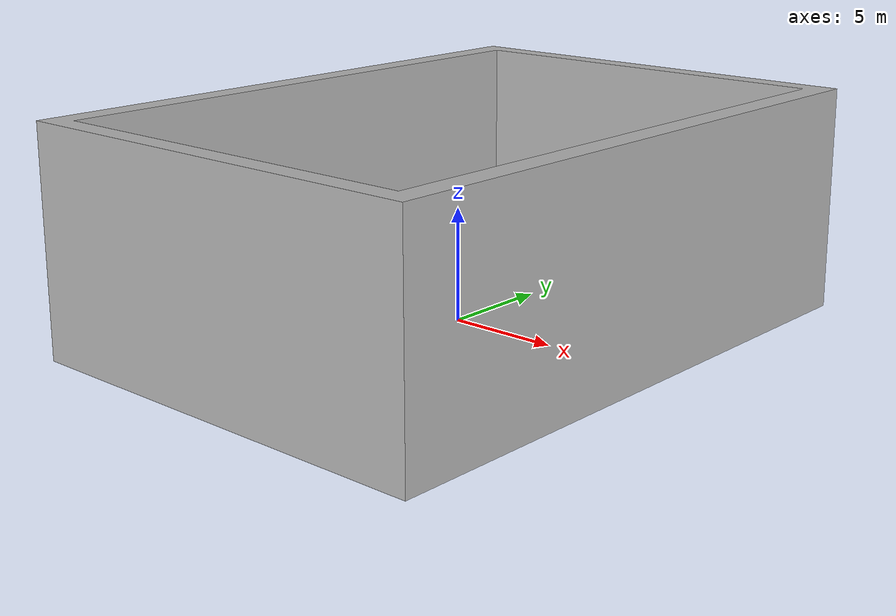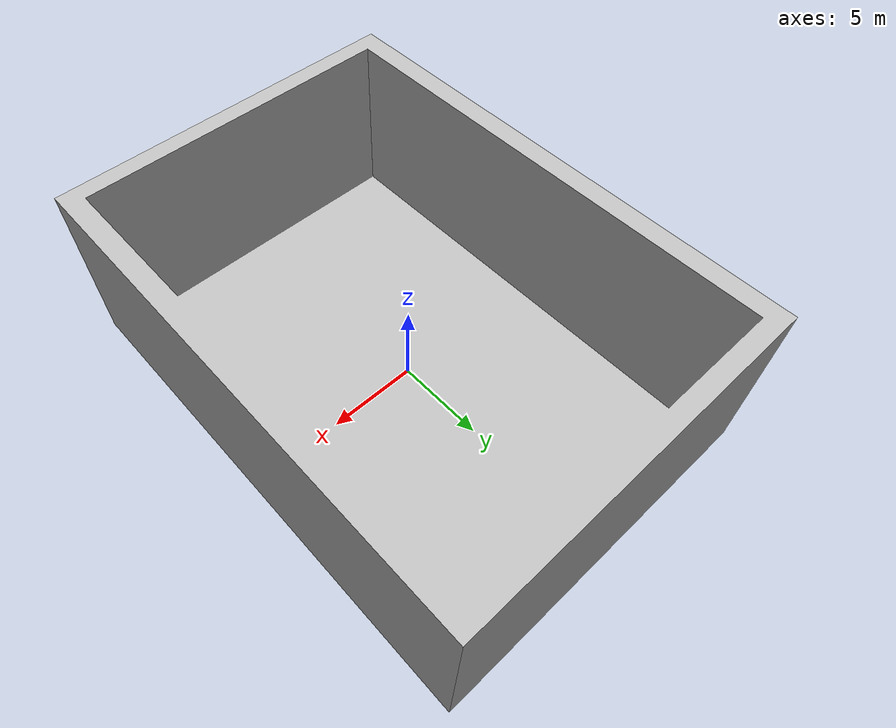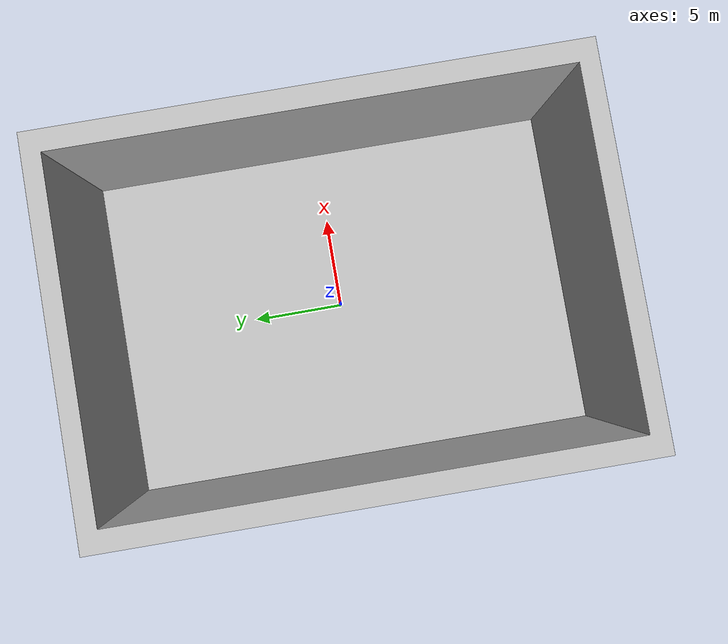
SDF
<sdf version="1.6">
 <world name="world">
  <model name="levine">
   <static>1</static>
   <link name="body">
    <visual name="visual">
     <pose>0 0 -.5 0 -0 0</pose>
     <geometry><mesh><uri>model://living_room/room.dae</uri></mesh></geometry>
    </visual>
    <collision name="collision">
     <pose>0 0 -0.5 0 -0 0</pose>
     <geometry><mesh><uri>model://living_room/room.stl</uri></mesh></geometry>
    </collision>
   </link>
  </model>
  <gravity>0 0 -9.8</gravity>
  <magnetic_field>6e-06 2.3e-05 -4.2e-05</magnetic_field>
  <atmosphere type="adiabatic"/>
  <physics name="default_physics" default="0" type="ode">
   <max_step_size>0.001</max_step_size>
   <real_time_factor>1</real_time_factor>
   <real_time_update_rate>1000</real_time_update_rate>
  </physics>
  <scene><ambient>0.4 0.4 0.4 1</ambient><background>0.7 0.7 0.7 1</background><shadows>1</shadows></scene>
  <spherical_coordinates>
   <surface_model>EARTH_WGS84</surface_model>
   <latitude_deg>0</latitude_deg>
   <longitude_deg>0</longitude_deg>
   <elevation>0</elevation>
   <heading_deg>0</heading_deg>
  </spherical_coordinates>
  <light name="user_point_light_0_clone_3" type="point">
   <pose>-5.87904 -7.04337 1 0 -0 0</pose>
   <diffuse>0.494118 0.494118 0.494118 1</diffuse>
   <specular>0.0941176 0.0941176 0.0941176 1</specular>
   <direction>0 0 -1</direction>
   <attenuation>
    <range>2000</range>
    <constant>0.1</constant>
    <linear>0</linear>
    <quadratic>0.001</quadratic>
   </attenuation>
   <cast_shadows>0</cast_shadows>
  </light>
  <light name="user_point_light_0_clone_3_clone_0_clone_2" type="point">
   <pose>-0.280562 0.409794 9 0 -0 0</pose>
   <diffuse>0.494118 0.494118 0.494118 1</diffuse>
   <specular>0.0901961 0.0901961 0.0901961 1</specular>
   <direction>0 0 -1</direction>
   <attenuation>
    <range>2000</range>
    <constant>0</constant>
    <linear>0</linear>
    <quadratic>0.01</quadratic>
   </attenuation>
   <cast_shadows>0</cast_shadows>
  </light>
  <light name="user_point_light_0_clone_3_clone_0_clone_2_clone" type="point">
   <pose>4.70046 -7.9771 9 0 -0 0</pose>
   <diffuse>0.494118 0.494118 0.494118 1</diffuse>
   <specular>0.0901961 0.0901961 0.0901961 1</specular>
   <direction>0 0 -1</direction>
   <attenuation>
    <range>2000</range>
    <constant>0</constant>
    <linear>0</linear>
    <quadratic>0.01</quadratic>
   </attenuation>
   <cast_shadows>0</cast_shadows>
  </light>
  <light name="user_point_light_0_clone_3_clone_0_clone_2_clone_0" type="point">
   <pose>4.97848 7.31625 9 0 -0 0</pose>
   <diffuse>0.494118 0.494118 0.494118 1</diffuse>
   <specular>0.0901961 0.0901961 0.0901961 1</specular>
   <direction>0 0 -1</direction>
   <attenuation>
    <range>2000</range>
    <constant>0</constant>
    <linear>0</linear>
    <quadratic>0.01</quadratic>
   </attenuation>
   <cast_shadows>0</cast_shadows>
  </light>
  <light name="user_point_light_0_clone_3_clone_0_clone_2_clone_1" type="point">
   <pose>-2.95045 7.64392 9 0 -0 0</pose>
   <diffuse>0.494118 0.494118 0.494118 1</diffuse>
   <specular>0.0901961 0.0901961 0.0901961 1</specular>
   <direction>0 0 -1</direction>
   <attenuation>
    <range>2000</range>
    <constant>0</constant>
    <linear>0</linear>
    <quadratic>0.01</quadratic>
   </attenuation>
   <cast_shadows>0</cast_shadows>
  </light>
 </world>
</sdf>
